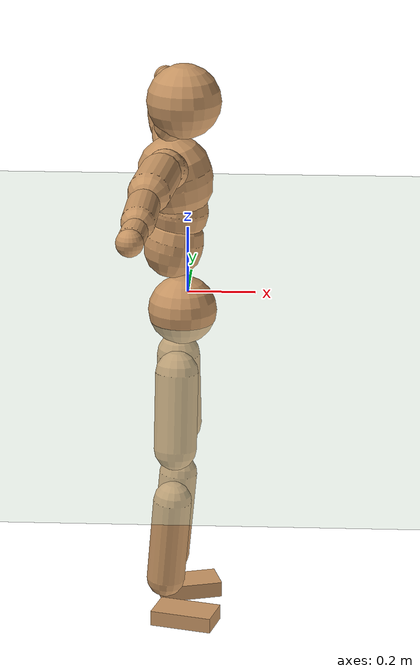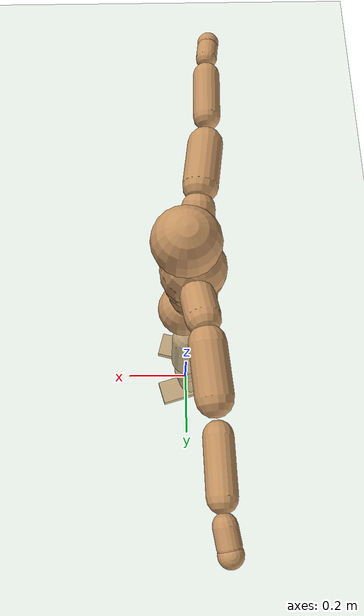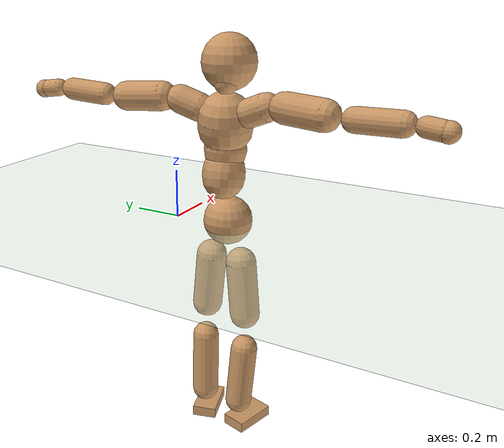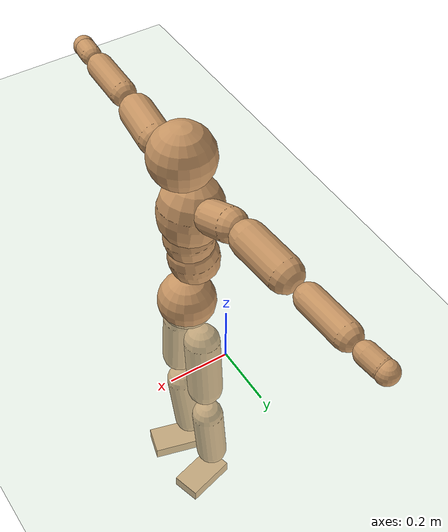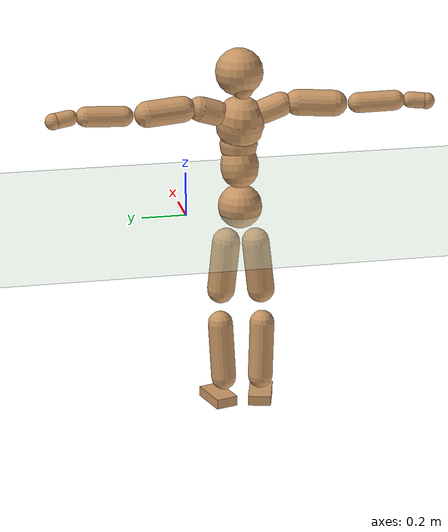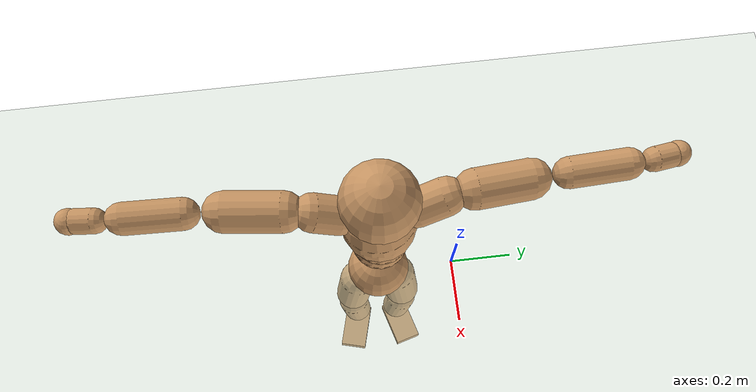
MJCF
<mujoco model="humanoid">
  <compiler coordinate="local"/>
  <default>
    <joint damping="0.0" armature="0.01" stiffness="0.0" limited="true"/>
    <geom conaffinity="1" condim="3" contype="7" margin="0.001" rgba="0.8 0.6 .4 1"/>
  </default>
  <asset>
    <texture type="skybox" builtin="gradient" rgb1=".4 .5 .6" rgb2="0 0 0" width="100" height="100"/>
    <texture builtin="flat" height="1278" mark="cross" markrgb="1 1 1" name="texgeom" random="0.01" rgb1="0.8 0.6 0.4" rgb2="0.8 0.6 0.4" type="cube" width="127"/>
    <texture builtin="checker" height="100" name="texplane" rgb1="0 0 0" rgb2="0.8 0.8 0.8" type="2d" width="100"/>
    <material name="MatPlane" reflectance="0.5" shininess="1" specular="1" texrepeat="60 60" texture="texplane"/>
    <material name="geom" texture="texgeom" texuniform="true"/>
  </asset>
  <worldbody>
    <light cutoff="100" diffuse="1 1 1" dir="-0 0 -1.3" directional="true" exponent="1" pos="0 0 1.3" specular=".1 .1 .1"/>
    <geom conaffinity="1" condim="3" name="floor" pos="0 0 0" rgba="0.8 0.9 0.8 1" size="100 100 .2" type="plane" material="MatPlane"/>
    <body name="Pelvis" pos="-0.0032 -0.2442 0.0298">
      <freejoint name="Pelvis"/>
      <geom type="sphere" contype="1" conaffinity="1" density="500" size="0.0995" pos="0.0000 0.0000 0.0000" name="Pelvis"/>
      <body name="L_Hip" pos="-0.0169 0.0586 -0.0836">
        <joint name="L_Hip_x" type="hinge" pos="0 0 0" axis="1 0 0" stiffness="800" damping="80" armature="0.02" range="-180.0000 180.0000"/>
        <joint name="L_Hip_y" type="hinge" pos="0 0 0" axis="0 1 0" stiffness="800" damping="80" armature="0.02" range="-180.0000 180.0000"/>
        <joint name="L_Hip_z" type="hinge" pos="0 0 0" axis="0 0 1" stiffness="800" damping="80" armature="0.02" range="-180.0000 180.0000"/>
        <geom type="capsule" contype="1" conaffinity="1" density="500" fromto="0.0012 0.0080 -0.0761 0.0049 0.0319 -0.3044" size="0.0627" name="L_Hip"/>
        <body name="L_Knee" pos="0.0062 0.0398 -0.3805">
          <joint name="L_Knee_x" type="hinge" pos="0 0 0" axis="1 0 0" stiffness="800" damping="80" armature="0.02" range="-180.0000 180.0000"/>
          <joint name="L_Knee_y" type="hinge" pos="0 0 0" axis="0 1 0" stiffness="800" damping="80" armature="0.02" range="-180.0000 180.0000"/>
          <joint name="L_Knee_z" type="hinge" pos="0 0 0" axis="0 0 1" stiffness="800" damping="80" armature="0.02" range="-180.0000 180.0000"/>
          <geom type="capsule" contype="1" conaffinity="1" density="500" fromto="-0.0079 -0.0032 -0.0856 -0.0314 -0.0130 -0.3423" size="0.0563" name="L_Knee"/>
          <body name="L_Ankle" pos="-0.0393 -0.0162 -0.4278">
            <joint name="L_Ankle_x" type="hinge" pos="0 0 0" axis="1 0 0" stiffness="800" damping="80" armature="0.02" range="-180.0000 180.0000"/>
            <joint name="L_Ankle_y" type="hinge" pos="0 0 0" axis="0 1 0" stiffness="800" damping="80" armature="0.02" range="-180.0000 180.0000"/>
            <joint name="L_Ankle_z" type="hinge" pos="0 0 0" axis="0 0 1" stiffness="800" damping="80" armature="0.02" range="-180.0000 180.0000"/>
            <geom type="box" contype="1" conaffinity="1" density="500" pos="0.0622 0.0177 -0.0299" size="0.0907 0.051 0.0229" quat="0.9904 0.0000 0.0000 0.1382" name="L_Ankle"/>
            <body name="L_Toe" pos="0.1243 0.0354 -0.0598">
              <joint name="L_Toe_x" type="hinge" pos="0 0 0" axis="1 0 0" stiffness="500" damping="50" armature="0.02" range="-180.0000 180.0000"/>
              <joint name="L_Toe_y" type="hinge" pos="0 0 0" axis="0 1 0" stiffness="500" damping="50" armature="0.02" range="-180.0000 180.0000"/>
              <joint name="L_Toe_z" type="hinge" pos="0 0 0" axis="0 0 1" stiffness="500" damping="50" armature="0.02" range="-180.0000 180.0000"/>
              <geom type="box" contype="1" conaffinity="1" density="500" pos="0.0000 0.0000 0.0288" size="0.0011 0.0025 0.0011" quat="0.9897 0.0000 0.0000 0.1434" name="L_Toe"/>
            </body>
          </body>
        </body>
      </body>
      <body name="R_Hip" pos="-0.0117 -0.0611 -0.0925">
        <joint name="R_Hip_x" type="hinge" pos="0 0 0" axis="1 0 0" stiffness="800" damping="80" armature="0.02" range="-180.0000 180.0000"/>
        <joint name="R_Hip_y" type="hinge" pos="0 0 0" axis="0 1 0" stiffness="800" damping="80" armature="0.02" range="-180.0000 180.0000"/>
        <joint name="R_Hip_z" type="hinge" pos="0 0 0" axis="0 0 1" stiffness="800" damping="80" armature="0.02" range="-180.0000 180.0000"/>
        <geom type="capsule" contype="1" conaffinity="1" density="500" fromto="-0.0013 -0.0080 -0.0761 -0.0053 -0.0322 -0.3046" size="0.0622" name="R_Hip"/>
        <body name="R_Knee" pos="-0.0066 -0.0402 -0.3807">
          <joint name="R_Knee_x" type="hinge" pos="0 0 0" axis="1 0 0" stiffness="800" damping="80" armature="0.02" range="-180.0000 180.0000"/>
          <joint name="R_Knee_y" type="hinge" pos="0 0 0" axis="0 1 0" stiffness="800" damping="80" armature="0.02" range="-180.0000 180.0000"/>
          <joint name="R_Knee_z" type="hinge" pos="0 0 0" axis="0 0 1" stiffness="800" damping="80" armature="0.02" range="-180.0000 180.0000"/>
          <geom type="capsule" contype="1" conaffinity="1" density="500" fromto="-0.0071 0.0041 -0.0844 -0.0284 0.0164 -0.3375" size="0.0562" name="R_Knee"/>
          <body name="R_Ankle" pos="-0.0355 0.0205 -0.4218">
            <joint name="R_Ankle_x" type="hinge" pos="0 0 0" axis="1 0 0" stiffness="800" damping="80" armature="0.02" range="-180.0000 180.0000"/>
            <joint name="R_Ankle_y" type="hinge" pos="0 0 0" axis="0 1 0" stiffness="800" damping="80" armature="0.02" range="-180.0000 180.0000"/>
            <joint name="R_Ankle_z" type="hinge" pos="0 0 0" axis="0 0 1" stiffness="800" damping="80" armature="0.02" range="-180.0000 180.0000"/>
            <geom type="box" contype="1" conaffinity="1" density="500" pos="0.0661 -0.0176 -0.0312" size="0.0915 0.0522 0.0226" quat="0.9916 0.0000 0.0000 -0.1297" name="R_Ankle"/>
            <body name="R_Toe" pos="0.1322 -0.0352 -0.0623">
              <joint name="R_Toe_x" type="hinge" pos="0 0 0" axis="1 0 0" stiffness="500" damping="50" armature="0.02" range="-180.0000 180.0000"/>
              <joint name="R_Toe_y" type="hinge" pos="0 0 0" axis="0 1 0" stiffness="500" damping="50" armature="0.02" range="-180.0000 180.0000"/>
              <joint name="R_Toe_z" type="hinge" pos="0 0 0" axis="0 0 1" stiffness="500" damping="50" armature="0.02" range="-180.0000 180.0000"/>
              <geom type="box" contype="1" conaffinity="1" density="500" pos="0.0000 0.0000 0.0309" size="0.0012 0.0026 0.0011" quat="0.9927 0.0000 0.0000 -0.1209" name="R_Toe"/>
            </body>
          </body>
        </body>
      </body>
      <body name="Torso" pos="-0.0385 0.0046 0.1273">
        <joint name="Torso_x" type="hinge" pos="0 0 0" axis="1 0 0" stiffness="1000" damping="100" armature="0.02" range="-180.0000 180.0000"/>
        <joint name="Torso_y" type="hinge" pos="0 0 0" axis="0 1 0" stiffness="1000" damping="100" armature="0.02" range="-180.0000 180.0000"/>
        <joint name="Torso_z" type="hinge" pos="0 0 0" axis="0 0 1" stiffness="1000" damping="100" armature="0.02" range="-180.0000 180.0000"/>
        <geom type="capsule" contype="1" conaffinity="1" density="500" fromto="0.0162 0.0029 0.0834 0.0108 0.0019 0.0556" size="0.0849" name="Torso"/>
        <body name="Spine" pos="0.027 0.0048 0.139">
          <joint name="Spine_x" type="hinge" pos="0 0 0" axis="1 0 0" stiffness="1000" damping="100" armature="0.02" range="-180.0000 180.0000"/>
          <joint name="Spine_y" type="hinge" pos="0 0 0" axis="0 1 0" stiffness="1000" damping="100" armature="0.02" range="-180.0000 180.0000"/>
          <joint name="Spine_z" type="hinge" pos="0 0 0" axis="0 0 1" stiffness="1000" damping="100" armature="0.02" range="-180.0000 180.0000"/>
          <geom type="capsule" contype="1" conaffinity="1" density="500" fromto="0.0027 -0.0013 0.0337 0.0018 -0.0009 0.0225" size="0.0843" name="Spine"/>
          <body name="Chest" pos="0.0045 -0.0022 0.0562">
            <joint name="Chest_x" type="hinge" pos="0 0 0" axis="1 0 0" stiffness="1000" damping="100" armature="0.02" range="-180.0000 180.0000"/>
            <joint name="Chest_y" type="hinge" pos="0 0 0" axis="0 1 0" stiffness="1000" damping="100" armature="0.02" range="-180.0000 180.0000"/>
            <joint name="Chest_z" type="hinge" pos="0 0 0" axis="0 0 1" stiffness="1000" damping="100" armature="0.02" range="-180.0000 180.0000"/>
            <geom type="capsule" contype="1" conaffinity="1" density="500" fromto="-0.0152 -0.0051 0.0882 -0.0102 -0.0034 0.0588" size="0.1071" name="Chest"/>
            <body name="Neck" pos="-0.0356 -0.0148 0.2118">
              <joint name="Neck_x" type="hinge" pos="0 0 0" axis="1 0 0" stiffness="500" damping="50" armature="0.02" range="-180.0000 180.0000"/>
              <joint name="Neck_y" type="hinge" pos="0 0 0" axis="0 1 0" stiffness="500" damping="50" armature="0.02" range="-180.0000 180.0000"/>
              <joint name="Neck_z" type="hinge" pos="0 0 0" axis="0 0 1" stiffness="500" damping="50" armature="0.02" range="-180.0000 180.0000"/>
              <geom type="capsule" contype="1" conaffinity="1" density="500" fromto="0.0096 0.0019 0.0170 0.0384 0.0075 0.0680" size="0.0469" name="Neck"/>
              <body name="Head" pos="0.048 0.0094 0.085">
                <joint name="Head_x" type="hinge" pos="0 0 0" axis="1 0 0" stiffness="500" damping="50" armature="0.02" range="-180.0000 180.0000"/>
                <joint name="Head_y" type="hinge" pos="0 0 0" axis="0 1 0" stiffness="500" damping="50" armature="0.02" range="-180.0000 180.0000"/>
                <joint name="Head_z" type="hinge" pos="0 0 0" axis="0 0 1" stiffness="500" damping="50" armature="0.02" range="-180.0000 180.0000"/>
                <geom type="sphere" contype="1" conaffinity="1" density="500" size="0.1068" pos="0.0000 0.0000 0.0000" name="Head"/>
              </body>
            </body>
            <body name="L_Thorax" pos="-0.0178 0.0766 0.1153">
              <joint name="L_Thorax_x" type="hinge" pos="0 0 0" axis="1 0 0" stiffness="500" damping="50" armature="0.02" range="-180.0000 180.0000"/>
              <joint name="L_Thorax_y" type="hinge" pos="0 0 0" axis="0 1 0" stiffness="500" damping="50" armature="0.02" range="-180.0000 180.0000"/>
              <joint name="L_Thorax_z" type="hinge" pos="0 0 0" axis="0 0 1" stiffness="500" damping="50" armature="0.02" range="-180.0000 180.0000"/>
              <geom type="capsule" contype="1" conaffinity="1" density="500" fromto="-0.0045 0.0261 0.0092 -0.0180 0.1045 0.0367" size="0.0556" name="L_Thorax"/>
              <body name="L_Shoulder" pos="-0.0225 0.1307 0.0459">
                <joint name="L_Shoulder_x" type="hinge" pos="0 0 0" axis="1 0 0" stiffness="500" damping="50" armature="0.02" range="-720.0000 720.0000"/>
                <joint name="L_Shoulder_y" type="hinge" pos="0 0 0" axis="0 1 0" stiffness="500" damping="50" armature="0.02" range="-720.0000 720.0000"/>
                <joint name="L_Shoulder_z" type="hinge" pos="0 0 0" axis="0 0 1" stiffness="500" damping="50" armature="0.02" range="-720.0000 720.0000"/>
                <geom type="capsule" contype="1" conaffinity="1" density="500" fromto="-0.0051 0.0525 -0.0033 -0.0204 0.2098 -0.0133" size="0.0582" name="L_Shoulder"/>
                <body name="L_Elbow" pos="-0.0255 0.2623 -0.0166">
                  <joint name="L_Elbow_x" type="hinge" pos="0 0 0" axis="1 0 0" stiffness="500" damping="50" armature="0.02" range="-720.0000 720.0000"/>
                  <joint name="L_Elbow_y" type="hinge" pos="0 0 0" axis="0 1 0" stiffness="500" damping="50" armature="0.02" range="-720.0000 720.0000"/>
                  <joint name="L_Elbow_z" type="hinge" pos="0 0 0" axis="0 0 1" stiffness="500" damping="50" armature="0.02" range="-720.0000 720.0000"/>
                  <geom type="capsule" contype="1" conaffinity="1" density="500" fromto="-0.0013 0.0545 0.0027 -0.0053 0.2181 0.0106" size="0.0448" name="L_Elbow"/>
                  <body name="L_Wrist" pos="-0.0066 0.2726 0.0133">
                    <joint name="L_Wrist_x" type="hinge" pos="0 0 0" axis="1 0 0" stiffness="300" damping="30" armature="0.02" range="-180.0000 180.0000"/>
                    <joint name="L_Wrist_y" type="hinge" pos="0 0 0" axis="0 1 0" stiffness="300" damping="30" armature="0.02" range="-180.0000 180.0000"/>
                    <joint name="L_Wrist_z" type="hinge" pos="0 0 0" axis="0 0 1" stiffness="300" damping="30" armature="0.02" range="-180.0000 180.0000"/>
                    <geom type="capsule" contype="1" conaffinity="1" density="500" fromto="-0.0032 0.0178 -0.0022 -0.0128 0.0714 -0.0087" size="0.0353" name="L_Wrist"/>
                    <body name="L_Hand" pos="-0.016 0.0892 -0.0109">
                      <joint name="L_Hand_x" type="hinge" pos="0 0 0" axis="1 0 0" stiffness="300" damping="30" armature="0.02" range="-180.0000 180.0000"/>
                      <joint name="L_Hand_y" type="hinge" pos="0 0 0" axis="0 1 0" stiffness="300" damping="30" armature="0.02" range="-180.0000 180.0000"/>
                      <joint name="L_Hand_z" type="hinge" pos="0 0 0" axis="0 0 1" stiffness="300" damping="30" armature="0.02" range="-180.0000 180.0000"/>
                      <geom type="sphere" contype="1" conaffinity="1" density="500" size="0.0366" pos="0.0000 0.0000 0.0000" name="L_Hand"/>
                    </body>
                  </body>
                </body>
              </body>
            </body>
            <body name="R_Thorax" pos="-0.0228 -0.0871 0.1136">
              <joint name="R_Thorax_x" type="hinge" pos="0 0 0" axis="1 0 0" stiffness="500" damping="50" armature="0.02" range="-180.0000 180.0000"/>
              <joint name="R_Thorax_y" type="hinge" pos="0 0 0" axis="0 1 0" stiffness="500" damping="50" armature="0.02" range="-180.0000 180.0000"/>
              <joint name="R_Thorax_z" type="hinge" pos="0 0 0" axis="0 0 1" stiffness="500" damping="50" armature="0.02" range="-180.0000 180.0000"/>
              <geom type="capsule" contype="1" conaffinity="1" density="500" fromto="-0.0021 -0.0237 0.0095 -0.0084 -0.0948 0.0380" size="0.0551" name="R_Thorax"/>
              <body name="R_Shoulder" pos="-0.0105 -0.1186 0.0475">
                <joint name="R_Shoulder_x" type="hinge" pos="0 0 0" axis="1 0 0" stiffness="500" damping="50" armature="0.02" range="-720.0000 720.0000"/>
                <joint name="R_Shoulder_y" type="hinge" pos="0 0 0" axis="0 1 0" stiffness="500" damping="50" armature="0.02" range="-720.0000 720.0000"/>
                <joint name="R_Shoulder_z" type="hinge" pos="0 0 0" axis="0 0 1" stiffness="500" damping="50" armature="0.02" range="-720.0000 720.0000"/>
                <geom type="capsule" contype="1" conaffinity="1" density="500" fromto="-0.0070 -0.0531 -0.0026 -0.0279 -0.2123 -0.0102" size="0.0586" name="R_Shoulder"/>
                <body name="R_Elbow" pos="-0.0349 -0.2654 -0.0128">
                  <joint name="R_Elbow_x" type="hinge" pos="0 0 0" axis="1 0 0" stiffness="500" damping="50" armature="0.02" range="-720.0000 720.0000"/>
                  <joint name="R_Elbow_y" type="hinge" pos="0 0 0" axis="0 1 0" stiffness="500" damping="50" armature="0.02" range="-720.0000 720.0000"/>
                  <joint name="R_Elbow_z" type="hinge" pos="0 0 0" axis="0 0 1" stiffness="500" damping="50" armature="0.02" range="-720.0000 720.0000"/>
                  <geom type="capsule" contype="1" conaffinity="1" density="500" fromto="-0.0012 -0.0546 0.0011 -0.0047 -0.2186 0.0044" size="0.0454" name="R_Elbow"/>
                  <body name="R_Wrist" pos="-0.0059 -0.2732 0.0055">
                    <joint name="R_Wrist_x" type="hinge" pos="0 0 0" axis="1 0 0" stiffness="300" damping="30" armature="0.02" range="-180.0000 180.0000"/>
                    <joint name="R_Wrist_y" type="hinge" pos="0 0 0" axis="0 1 0" stiffness="300" damping="30" armature="0.02" range="-180.0000 180.0000"/>
                    <joint name="R_Wrist_z" type="hinge" pos="0 0 0" axis="0 0 1" stiffness="300" damping="30" armature="0.02" range="-180.0000 180.0000"/>
                    <geom type="capsule" contype="1" conaffinity="1" density="500" fromto="-0.0020 -0.0181 -0.0018 -0.0082 -0.0724 -0.0071" size="0.0357" name="R_Wrist"/>
                    <body name="R_Hand" pos="-0.0102 -0.0904 -0.0089">
                      <joint name="R_Hand_x" type="hinge" pos="0 0 0" axis="1 0 0" stiffness="300" damping="30" armature="0.02" range="-180.0000 180.0000"/>
                      <joint name="R_Hand_y" type="hinge" pos="0 0 0" axis="0 1 0" stiffness="300" damping="30" armature="0.02" range="-180.0000 180.0000"/>
                      <joint name="R_Hand_z" type="hinge" pos="0 0 0" axis="0 0 1" stiffness="300" damping="30" armature="0.02" range="-180.0000 180.0000"/>
                      <geom type="sphere" contype="1" conaffinity="1" density="500" size="0.0368" pos="0.0000 0.0000 0.0000" name="R_Hand"/>
                    </body>
                  </body>
                </body>
              </body>
            </body>
          </body>
        </body>
      </body>
    </body>
  </worldbody>
  <actuator>
    <motor name="L_Hip_x" joint="L_Hip_x" gear="500"/>
    <motor name="L_Hip_y" joint="L_Hip_y" gear="500"/>
    <motor name="L_Hip_z" joint="L_Hip_z" gear="500"/>
    <motor name="L_Knee_x" joint="L_Knee_x" gear="500"/>
    <motor name="L_Knee_y" joint="L_Knee_y" gear="500"/>
    <motor name="L_Knee_z" joint="L_Knee_z" gear="500"/>
    <motor name="L_Ankle_x" joint="L_Ankle_x" gear="500"/>
    <motor name="L_Ankle_y" joint="L_Ankle_y" gear="500"/>
    <motor name="L_Ankle_z" joint="L_Ankle_z" gear="500"/>
    <motor name="L_Toe_x" joint="L_Toe_x" gear="500"/>
    <motor name="L_Toe_y" joint="L_Toe_y" gear="500"/>
    <motor name="L_Toe_z" joint="L_Toe_z" gear="500"/>
    <motor name="R_Hip_x" joint="R_Hip_x" gear="500"/>
    <motor name="R_Hip_y" joint="R_Hip_y" gear="500"/>
    <motor name="R_Hip_z" joint="R_Hip_z" gear="500"/>
    <motor name="R_Knee_x" joint="R_Knee_x" gear="500"/>
    <motor name="R_Knee_y" joint="R_Knee_y" gear="500"/>
    <motor name="R_Knee_z" joint="R_Knee_z" gear="500"/>
    <motor name="R_Ankle_x" joint="R_Ankle_x" gear="500"/>
    <motor name="R_Ankle_y" joint="R_Ankle_y" gear="500"/>
    <motor name="R_Ankle_z" joint="R_Ankle_z" gear="500"/>
    <motor name="R_Toe_x" joint="R_Toe_x" gear="500"/>
    <motor name="R_Toe_y" joint="R_Toe_y" gear="500"/>
    <motor name="R_Toe_z" joint="R_Toe_z" gear="500"/>
    <motor name="Torso_x" joint="Torso_x" gear="500"/>
    <motor name="Torso_y" joint="Torso_y" gear="500"/>
    <motor name="Torso_z" joint="Torso_z" gear="500"/>
    <motor name="Spine_x" joint="Spine_x" gear="500"/>
    <motor name="Spine_y" joint="Spine_y" gear="500"/>
    <motor name="Spine_z" joint="Spine_z" gear="500"/>
    <motor name="Chest_x" joint="Chest_x" gear="500"/>
    <motor name="Chest_y" joint="Chest_y" gear="500"/>
    <motor name="Chest_z" joint="Chest_z" gear="500"/>
    <motor name="Neck_x" joint="Neck_x" gear="500"/>
    <motor name="Neck_y" joint="Neck_y" gear="500"/>
    <motor name="Neck_z" joint="Neck_z" gear="500"/>
    <motor name="Head_x" joint="Head_x" gear="500"/>
    <motor name="Head_y" joint="Head_y" gear="500"/>
    <motor name="Head_z" joint="Head_z" gear="500"/>
    <motor name="L_Thorax_x" joint="L_Thorax_x" gear="500"/>
    <motor name="L_Thorax_y" joint="L_Thorax_y" gear="500"/>
    <motor name="L_Thorax_z" joint="L_Thorax_z" gear="500"/>
    <motor name="L_Shoulder_x" joint="L_Shoulder_x" gear="500"/>
    <motor name="L_Shoulder_y" joint="L_Shoulder_y" gear="500"/>
    <motor name="L_Shoulder_z" joint="L_Shoulder_z" gear="500"/>
    <motor name="L_Elbow_x" joint="L_Elbow_x" gear="500"/>
    <motor name="L_Elbow_y" joint="L_Elbow_y" gear="500"/>
    <motor name="L_Elbow_z" joint="L_Elbow_z" gear="500"/>
    <motor name="L_Wrist_x" joint="L_Wrist_x" gear="500"/>
    <motor name="L_Wrist_y" joint="L_Wrist_y" gear="500"/>
    <motor name="L_Wrist_z" joint="L_Wrist_z" gear="500"/>
    <motor name="L_Hand_x" joint="L_Hand_x" gear="500"/>
    <motor name="L_Hand_y" joint="L_Hand_y" gear="500"/>
    <motor name="L_Hand_z" joint="L_Hand_z" gear="500"/>
    <motor name="R_Thorax_x" joint="R_Thorax_x" gear="500"/>
    <motor name="R_Thorax_y" joint="R_Thorax_y" gear="500"/>
    <motor name="R_Thorax_z" joint="R_Thorax_z" gear="500"/>
    <motor name="R_Shoulder_x" joint="R_Shoulder_x" gear="500"/>
    <motor name="R_Shoulder_y" joint="R_Shoulder_y" gear="500"/>
    <motor name="R_Shoulder_z" joint="R_Shoulder_z" gear="500"/>
    <motor name="R_Elbow_x" joint="R_Elbow_x" gear="500"/>
    <motor name="R_Elbow_y" joint="R_Elbow_y" gear="500"/>
    <motor name="R_Elbow_z" joint="R_Elbow_z" gear="500"/>
    <motor name="R_Wrist_x" joint="R_Wrist_x" gear="500"/>
    <motor name="R_Wrist_y" joint="R_Wrist_y" gear="500"/>
    <motor name="R_Wrist_z" joint="R_Wrist_z" gear="500"/>
    <motor name="R_Hand_x" joint="R_Hand_x" gear="500"/>
    <motor name="R_Hand_y" joint="R_Hand_y" gear="500"/>
    <motor name="R_Hand_z" joint="R_Hand_z" gear="500"/>
  </actuator>
  <contact>
    <exclude body1="Torso" body2="Chest"/>
    <exclude body1="Head" body2="Chest"/>
    <exclude body1="R_Knee" body2="R_Toe"/>
    <exclude body1="R_Knee" body2="L_Ankle"/>
    <exclude body1="R_Knee" body2="L_Toe"/>
    <exclude body1="L_Knee" body2="L_Toe"/>
    <exclude body1="L_Knee" body2="R_Ankle"/>
    <exclude body1="L_Knee" body2="R_Toe"/>
    <exclude body1="L_Shoulder" body2="Chest"/>
    <exclude body1="R_Shoulder" body2="Chest"/>
  </contact>
  <sensor/>
  <size njmax="700" nconmax="700"/>
</mujoco>
